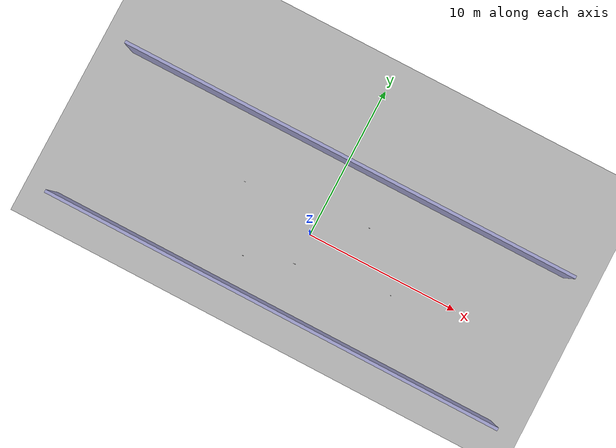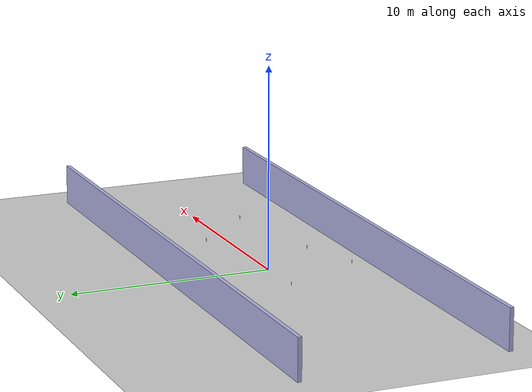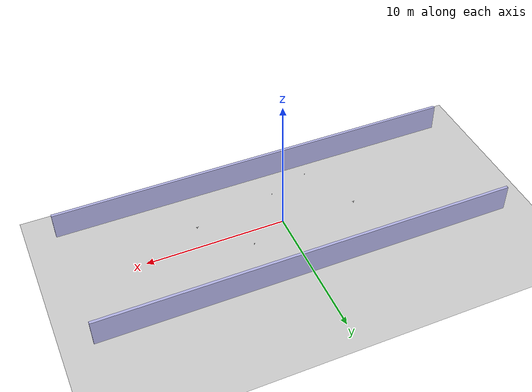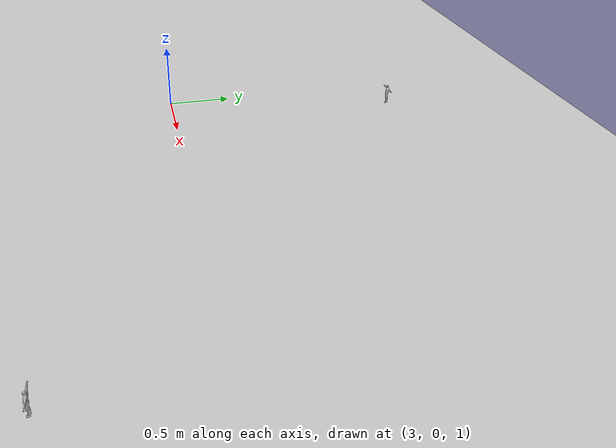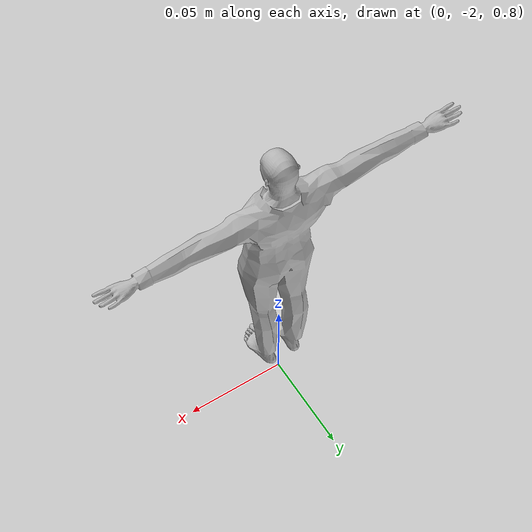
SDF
<?xml version="1.0"?>
<sdf version="1.6">
  <world name="hallway_crowded">

    <physics type="ode">
      <max_step_size>0.001</max_step_size>
      <real_time_factor>1</real_time_factor>
      <real_time_update_rate>1000</real_time_update_rate>
    </physics>

    <light name="sun" type="directional">
      <cast_shadows>true</cast_shadows>
      <pose>0 0 10 0 0 0</pose>
      <diffuse>0.8 0.8 0.8 1</diffuse>
      <specular>0.2 0.2 0.2 1</specular>
      <attenuation>
        <range>1000</range>
        <constant>0.9</constant>
        <linear>0.01</linear>
        <quadratic>0.001</quadratic>
      </attenuation>
      <direction>-0.5 0.1 -0.9</direction>
    </light>

    <model name="ground_plane">
      <static>true</static>
      <link name="link">
        <collision name="collision">
          <geometry>
            <plane>
              <normal>0 0 1</normal>
              <size>100 100</size>
            </plane>
          </geometry>
        </collision>
        <visual name="visual">
          <geometry>
            <plane>
              <normal>0 0 1</normal>
              <size>100 100</size>
            </plane>
          </geometry>
          <material>
            <ambient>0.8 0.8 0.8 1</ambient>
            <diffuse>0.8 0.8 0.8 1</diffuse>
          </material>
        </visual>
      </link>
    </model>

    <model name="left_wall">
      <static>true</static>
      <pose>0 -5 1 0 0 0</pose>
      <link name="link">
        <collision name="collision">
          <geometry>
            <box>
              <size>30 0.2 2</size>
            </box>
          </geometry>
        </collision>
        <visual name="visual">
          <geometry>
            <box>
              <size>30 0.2 2</size>
            </box>
          </geometry>
          <material>
            <ambient>0.7 0.7 0.9 1</ambient>
            <diffuse>0.7 0.7 0.9 1</diffuse>
          </material>
        </visual>
      </link>
    </model>

    <model name="right_wall">
      <static>true</static>
      <pose>0 5 1 0 0 0</pose>
      <link name="link">
        <collision name="collision">
          <geometry>
            <box>
              <size>30 0.2 2</size>
            </box>
          </geometry>
        </collision>
        <visual name="visual">
          <geometry>
            <box>
              <size>30 0.2 2</size>
            </box>
          </geometry>
          <material>
            <ambient>0.7 0.7 0.9 1</ambient>
            <diffuse>0.7 0.7 0.9 1</diffuse>
          </material>
        </visual>
      </link>
    </model>

    <!-- Person 1 -->
    <model name="person_1">
      <pose>-5 1 0 0 0 0</pose>
      <static>false</static>
      <link name="link">
        <inertial>
          <mass>5.0</mass>
          <inertia>
            <ixx>0.1</ixx><ixy>0</ixy><ixz>0</ixz>
            <iyy>0.1</iyy><iyz>0</iyz>
            <izz>0.1</izz>
          </inertia>
        </inertial>
        <collision name="collision">
          <geometry><box><size>0.5 0.5 1.8</size></box></geometry>
          <pose>0 0 0.9 0 0 0</pose>
        </collision>
        <visual name="visual">
          <pose>0 0 0.9 0 0 0</pose>
          <geometry>
            <mesh>
              <uri>/usr/share/gazebo-11/media/models/stand.dae</uri>
              <scale>1.0 1.0 1.0</scale>
            </mesh>
          </geometry>
        </visual>
      </link>
      <plugin name="person_1_planar_move" filename="libgazebo_ros_planar_move.so">
        <ros><namespace>person_1</namespace></ros>
        <update_rate>50</update_rate>
        <publish_odom>false</publish_odom>
        <publish_odom_tf>false</publish_odom_tf>
      </plugin>
    </model>

    <!-- Person 2 -->
    <model name="person_2">
      <pose>0 -2 0 0 0 0</pose>
      <static>false</static>
      <link name="link">
        <inertial>
          <mass>5.0</mass>
          <inertia>
            <ixx>0.1</ixx><ixy>0</ixy><ixz>0</ixz>
            <iyy>0.1</iyy><iyz>0</iyz>
            <izz>0.1</izz>
          </inertia>
        </inertial>
        <collision name="collision">
          <geometry><box><size>0.5 0.5 1.8</size></box></geometry>
          <pose>0 0 0.9 0 0 0</pose>
        </collision>
        <visual name="visual">
          <pose>0 0 0.9 0 0 0</pose>
          <geometry>
            <mesh>
              <uri>/usr/share/gazebo-11/media/models/stand.dae</uri>
              <scale>1.0 1.0 1.0</scale>
            </mesh>
          </geometry>
        </visual>
      </link>
      <plugin name="person_2_planar_move" filename="libgazebo_ros_planar_move.so">
        <ros><namespace>person_2</namespace></ros>
        <update_rate>50</update_rate>
        <publish_odom>false</publish_odom>
        <publish_odom_tf>false</publish_odom_tf>
      </plugin>
    </model>

    <!-- Person 3 -->
    <model name="person_3">
      <pose>3 2 0 0 0 0</pose>
      <static>false</static>
      <link name="link">
        <inertial>
          <mass>5.0</mass>
          <inertia>
            <ixx>0.1</ixx><ixy>0</ixy><ixz>0</ixz>
            <iyy>0.1</iyy><iyz>0</iyz>
            <izz>0.1</izz>
          </inertia>
        </inertial>
        <collision name="collision">
          <geometry><box><size>0.5 0.5 1.8</size></box></geometry>
          <pose>0 0 0.9 0 0 0</pose>
        </collision>
        <visual name="visual">
          <pose>0 0 0.9 0 0 0</pose>
          <geometry>
            <mesh>
              <uri>/usr/share/gazebo-11/media/models/stand.dae</uri>
              <scale>1.0 1.0 1.0</scale>
            </mesh>
          </geometry>
        </visual>
      </link>
      <plugin name="person_3_planar_move" filename="libgazebo_ros_planar_move.so">
        <ros><namespace>person_3</namespace></ros>
        <update_rate>50</update_rate>
        <publish_odom>false</publish_odom>
        <publish_odom_tf>false</publish_odom_tf>
      </plugin>
    </model>

    <!-- Person 4 -->
    <model name="person_4">
      <pose>6 -1 0 0 0 0</pose>
      <static>false</static>
      <link name="link">
        <inertial>
          <mass>5.0</mass>
          <inertia>
            <ixx>0.1</ixx><ixy>0</ixy><ixz>0</ixz>
            <iyy>0.1</iyy><iyz>0</iyz>
            <izz>0.1</izz>
          </inertia>
        </inertial>
        <collision name="collision">
          <geometry><box><size>0.5 0.5 1.8</size></box></geometry>
          <pose>0 0 0.9 0 0 0</pose>
        </collision>
        <visual name="visual">
          <pose>0 0 0.9 0 0 0</pose>
          <geometry>
            <mesh>
              <uri>/usr/share/gazebo-11/media/models/stand.dae</uri>
              <scale>1.0 1.0 1.0</scale>
            </mesh>
          </geometry>
        </visual>
      </link>
      <plugin name="person_4_planar_move" filename="libgazebo_ros_planar_move.so">
        <ros><namespace>person_4</namespace></ros>
        <update_rate>50</update_rate>
        <publish_odom>false</publish_odom>
        <publish_odom_tf>false</publish_odom_tf>
      </plugin>
    </model>

    <!-- Person 5 -->
    <model name="person_5">
      <pose>-3 -3 0 0 0 0</pose>
      <static>false</static>
      <link name="link">
        <inertial>
          <mass>5.0</mass>
          <inertia>
            <ixx>0.1</ixx><ixy>0</ixy><ixz>0</ixz>
            <iyy>0.1</iyy><iyz>0</iyz>
            <izz>0.1</izz>
          </inertia>
        </inertial>
        <collision name="collision">
          <geometry><box><size>0.5 0.5 1.8</size></box></geometry>
          <pose>0 0 0.9 0 0 0</pose>
        </collision>
        <visual name="visual">
          <pose>0 0 0.9 0 0 0</pose>
          <geometry>
            <mesh>
              <uri>/usr/share/gazebo-11/media/models/stand.dae</uri>
              <scale>1.0 1.0 1.0</scale>
            </mesh>
          </geometry>
        </visual>
      </link>
      <plugin name="person_5_planar_move" filename="libgazebo_ros_planar_move.so">
        <ros><namespace>person_5</namespace></ros>
        <update_rate>50</update_rate>
        <publish_odom>false</publish_odom>
        <publish_odom_tf>false</publish_odom_tf>
      </plugin>
    </model>

  </world>
</sdf>
